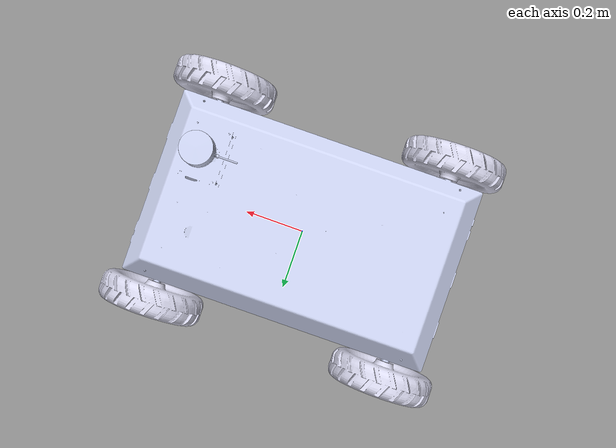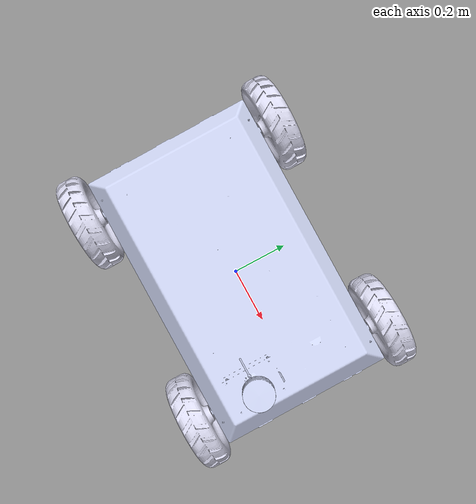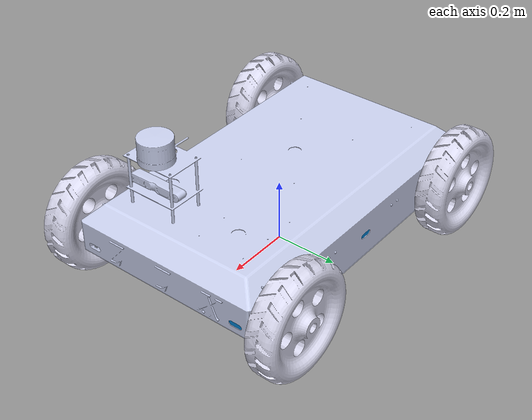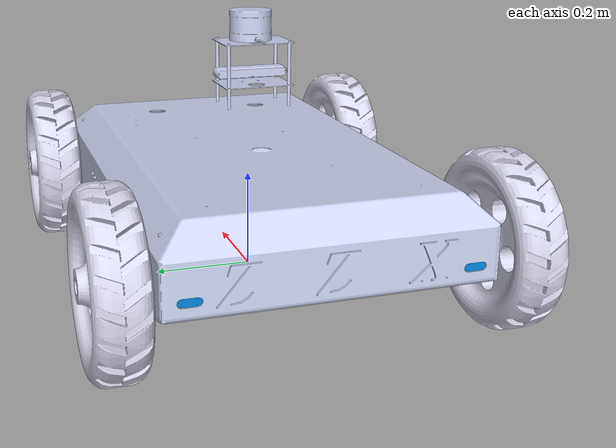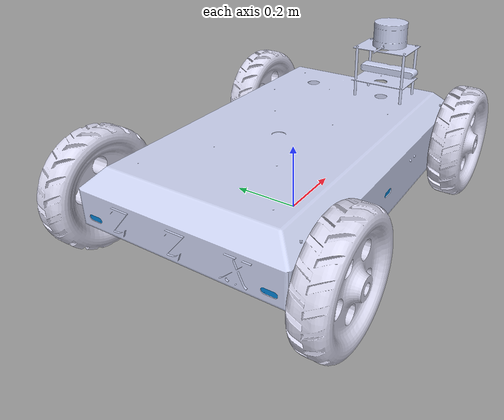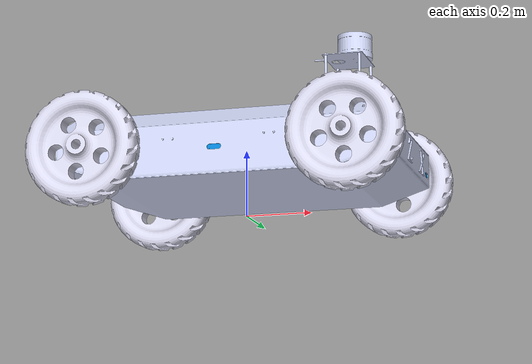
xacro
<?xml version="1.0" encoding="utf-8"?>
<!-- This xacro was created by ZZX-->
<robot xmlns:xacro="http://www.ros.org/wiki/xacro"
    xmlns:sensor="http://playerstage.sourceforge.net/gazebo/xmlschema/#sensor"
    xmlns:controller="http://playerstage.sourceforge.net/gazebo/xmlschema/#controller"
    xmlns:interface="http://playerstage.sourceforge.net/gazebo/xmlschema/#interface"
    name="zzx_run_robot">

<!--base_link-->
  <link
    name="base_link">
    <inertial>
      <origin
        xyz="0.00741047992278929 -0.00341114189657439 0.114186284669122"
        rpy="0 0 0" />
      <mass
        value="3.96236436148786" />
      <inertia
        ixx="0.178506185725259"
        ixy="0.000108304306880873"
        ixz="0.000169549055394087"
        iyy="0.404759631587269"
        iyz="1.00448230235288E-06"
        izz="0.561130623679876" />
    </inertial>
    <visual>
      <origin
        xyz="0 0 0"
        rpy="0 0 0" />
      <geometry>
        <mesh
          filename="package://zzx_run_description/meshes/base_link.STL" />
      </geometry>
      <material
        name="">
        <color
          rgba="0.792156862745098 0.819607843137255 0.933333333333333 1" />
      </material>
    </visual>
    <collision>
      <origin
        xyz="0 0 0"
        rpy="0 0 0" />
      <geometry>
        <mesh
          filename="package://zzx_run_description/meshes/base_link.STL" />
      </geometry>
    </collision>
  </link>

<!--base_footprint-->
   <link name="base_footprint">
            <visual>
                <origin xyz="0 0 0" rpy="0 0 0" />
                <geometry>
                    <box size="0.001 0.001 0.001" />
                </geometry>
            </visual>
  </link>

  <joint name="base_footprint_joint" type="fixed">
            <origin xyz="0 0 0.06746" rpy="0 0 0" />
            <parent link="base_footprint"/>
            <child link="base_link" />
  </joint>

<!--left_front_wheel_link-->
  <link
    name="left_front_wheel_link">
    <inertial>
      <origin
        xyz="-4.78387528979329E-07 0.0527999229567212 -1.21519264034697E-06"
        rpy="0 0 0" />
      <mass
        value="5.58816289074736" />
      <inertia
        ixx="0.0467264175417539"
        ixy="4.21922638423182E-10"
        ixz="4.31360254637763E-10"
        iyy="0.0872654610518181"
        iyz="5.11812738578019E-11"
        izz="0.0467264187453853" />
    </inertial>
    <visual>
      <origin
        xyz="0 0 0"
        rpy="0 0 0" />
      <geometry>
        <mesh
          filename="package://zzx_run_description/meshes/left_front_wheel_link.STL" />
      </geometry>
      <material
        name="">
        <color
          rgba="0.83921568627451 0.83921568627451 0.92156862745098 1" />
      </material>
    </visual>
    <collision>
      <origin
        xyz="0 0 0"
        rpy="0 0 0" />
      <geometry>
        <mesh
          filename="package://zzx_run_description/meshes/left_front_wheel_link.STL" />
      </geometry>
    </collision>
  </link>

  <!--left_front_wheel_link_joint-->
  <joint
    name="left_front_wheel_link_joint"
    type="continuous">
    <origin
      xyz="0.390000000000006 0.309999999999989 0.0849999999999932"
      rpy="0 0 0" />
    <parent
      link="base_link" />
    <child
      link="left_front_wheel_link" />
    <axis
      xyz="0 1 0" />
  </joint>

  <!--left_behind_wheel_link-->
  <link
    name="left_behind_wheel_link">
    <inertial>
      <origin
        xyz="1.31378196099874E-07 0.0527999220844182 -1.30022679351027E-06"
        rpy="0 0 0" />
      <mass
        value="5.58816261475792" />
      <inertia
        ixx="0.0467264178495617"
        ixy="-1.48432408253074E-10"
        ixz="3.45934344448938E-11"
        iyy="0.0872654610290871"
        iyz="5.288073487882E-10"
        izz="0.0467264184119642" />
    </inertial>
    <visual>
      <origin
        xyz="0 0 0"
        rpy="0 0 0" />
      <geometry>
        <mesh
          filename="package://zzx_run_description/meshes/left_behind_wheel_link.STL" />
      </geometry>
      <material
        name="">
        <color
          rgba="0.83921568627451 0.83921568627451 0.92156862745098 1" />
      </material>
    </visual>
    <collision>
      <origin
        xyz="0 0 0"
        rpy="0 0 0" />
      <geometry>
        <mesh
          filename="package://zzx_run_description/meshes/left_behind_wheel_link.STL" />
      </geometry>
    </collision>
  </link>

  <!--left_behind_wheel_link_joint-->
  <joint
    name="left_behind_wheel_link_joint"
    type="continuous">
    <origin
      xyz="-0.389999999999994 0.31 0.0850000000000068"
      rpy="0 0 0" />
    <parent
      link="base_link" />
    <child
      link="left_behind_wheel_link" />
    <axis
      xyz="0 1 0" />
  </joint>

  <!--right_front_wheel_link-->
  <link
    name="right_front_wheel_link">
    <inertial>
      <origin
        xyz="1.23487383696386E-06 -0.052800077037773 4.18657537137879E-07"
        rpy="0 0 0" />
      <mass
        value="5.58816289283226" />
      <inertia
        ixx="0.0467264183997509"
        ixy="-4.77846900738126E-10"
        ixz="9.0196657416584E-11"
        iyy="0.0872654610291803"
        iyz="-2.63885619866361E-10"
        izz="0.0467264178624116" />
    </inertial>
    <visual>
      <origin
        xyz="0 0 0"
        rpy="0 0 0" />
      <geometry>
        <mesh
          filename="package://zzx_run_description/meshes/right_front_wheel_link.STL" />
      </geometry>
      <material
        name="">
        <color
          rgba="0.83921568627451 0.83921568627451 0.92156862745098 1" />
      </material>
    </visual>
    <collision>
      <origin
        xyz="0 0 0"
        rpy="0 0 0" />
      <geometry>
        <mesh
          filename="package://zzx_run_description/meshes/right_front_wheel_link.STL" />
      </geometry>
    </collision>
  </link>

  <!--right_front_wheel_link_joint-->
  <joint
    name="right_front_wheel_link_joint"
    type="continuous">
    <origin
      xyz="0.389999999999997 -0.309999999999999 0.0849999999999932"
      rpy="0 0 0" />
    <parent
      link="base_link" />
    <child
      link="right_front_wheel_link" />
    <axis
      xyz="0 1 0" />
  </joint>

  <!--right_behind_wheel_link-->
  <link
    name="right_behind_wheel_link">
    <inertial>
      <origin
        xyz="-1.17487549072814E-06 -0.0528000779026511 5.64813343303938E-07"
        rpy="0 0 0" />
      <mass
        value="5.58816261843466" />
      <inertia
        ixx="0.0467264186791865"
        ixy="2.30502475654598E-11"
        ixz="-5.12433901318596E-10"
        iyy="0.0872654610531356"
        iyz="-4.26967668323502E-10"
        izz="0.0467264176094793" />
    </inertial>
    <visual>
      <origin
        xyz="0 0 0"
        rpy="0 0 0" />
      <geometry>
        <mesh
          filename="package://zzx_run_description/meshes/right_behind_wheel_link.STL" />
      </geometry>
      <material
        name="">
        <color
          rgba="0.83921568627451 0.83921568627451 0.92156862745098 1" />
      </material>
    </visual>
    <collision>
      <origin
        xyz="0 0 0"
        rpy="0 0 0" />
      <geometry>
        <mesh
          filename="package://zzx_run_description/meshes/right_behind_wheel_link.STL" />
      </geometry>
    </collision>
  </link>

  <!--right_behind_wheel_link_joint-->
  <joint
    name="right_behind_wheel_link_joint"
    type="continuous">
    <origin
      xyz="-0.390000000000003 -0.309999999999988 0.0850000000000068"
      rpy="0 0 0" />
    <parent
      link="base_link" />
    <child
      link="right_behind_wheel_link" />
    <axis
      xyz="0 1 0" />
  </joint>

  <!--camera_link-->
  <link
    name="camera_link">
    <inertial>
      <origin
        xyz="-0.0168162954023792 0.00256898920993011 -0.000512016798250026"
        rpy="0 0 0" />
      <mass
        value="0.146986742470214" />
      <inertia
        ixx="0.000382731548245758"
        ixy="4.93963664924208E-07"
        ixz="-2.21084683413792E-07"
        iyy="2.18219626833256E-05"
        iyz="1.36591231466188E-08"
        izz="0.00039064219791682" />
    </inertial>
    <visual>
      <origin
        xyz="0 0 0"
        rpy="0 0 0" />
      <geometry>
        <mesh
          filename="package://zzx_run_description/meshes/camera_link.STL" />
      </geometry>
      <material
        name="">
        <color
          rgba="0.792156862745098 0.819607843137255 0.933333333333333 1" />
      </material>
    </visual>
    <collision>
      <origin
        xyz="0 0 0"
        rpy="0 0 0" />
      <geometry>
        <mesh
          filename="package://zzx_run_description/meshes/camera_link.STL" />
      </geometry>
    </collision>
  </link>

  <!--camera_link_joint-->
  <joint
    name="camera_link_joint"
    type="fixed">
    <origin
      xyz="0.386266044151218 -0.124376808120098 0.277447441433298"
      rpy="0 0 0" />
    <parent
      link="base_link" />
    <child
      link="camera_link" />
    <axis
      xyz="0 0 0" />
  </joint>

<!--camera_frame_optical-->
  <link name="camera_frame_optical"/>
  <joint name="camera_optical_joint" type="fixed">
            <origin xyz="0 0 0" rpy="0 0 0"/>
            <parent link="camera_link"/>
            <child link="camera_frame_optical"/>
  </joint>

<!--lidar_link-->
  <link
    name="lidar_link">
    <inertial>
      <origin
        xyz="-0.000294907920402432 -2.58127452130996E-06 0.0357873616759956"
        rpy="0 0 0" />
      <mass
        value="0.584837208798273" />
      <inertia
        ixx="0.000628734791137339"
        ixy="1.12598116749922E-10"
        ixz="6.85180097758129E-08"
        iyy="0.000630029723696654"
        iyz="-5.00698245263915E-08"
        izz="0.000749153306350983" />
    </inertial>
    <visual>
      <origin
        xyz="0 0 -0.04"
        rpy="0 0 0" />
      <geometry>
        <mesh
          filename="package://zzx_run_description/meshes/lidar_link.STL" />
      </geometry>
      <material
        name="">
        <color
          rgba="0.792156862745098 0.819607843137255 0.933333333333333 1" />
      </material>
    </visual>
    <collision>
      <origin
        xyz="0 0 0"
        rpy="0 0 0" />
      <geometry>
        <mesh
          filename="package://zzx_run_description/meshes/lidar_link.STL" />
      </geometry>
    </collision>
  </link>

  <!--lidar_link_joint-->
  <joint
    name="lidar_link_joint"
    type="fixed">
    <origin
      xyz="0.365857864376286 -0.120857864376271 0.396652891956056"
      rpy="0 0 0" />
    <parent
      link="base_link" />
    <child
      link="lidar_link" />
    <axis
      xyz="0 0 0" />
  </joint>

  <!--senor-->
  <link
    name="sensor_front_left_link">
    <inertial>
      <origin
        xyz="0.000750000000000028 0 3.09553724072015E-05"
        rpy="0 0 0" />
      <mass
        value="0.00132898274514749" />
      <inertia
        ixx="2.65815808309703E-07"
        ixy="-3.24870024445377E-21"
        ixz="-7.30857667981816E-22"
        iyy="4.3932216790417E-08"
        iyz="2.51382133997089E-23"
        izz="2.22381960048716E-07" />
    </inertial>
    <visual>
      <origin
        xyz="0 0 0"
        rpy="0 0 0" />
      <geometry>
        <mesh
          filename="package://zzx_run_description/meshes/sensor_front_left_link.STL" />
      </geometry>
      <material
        name="">
        <color
          rgba="0.00784313725490196 0.501960784313725 0.823529411764706 1" />
      </material>
    </visual>
    <collision>
      <origin
        xyz="0 0 0"
        rpy="0 0 0" />
      <geometry>
        <mesh
          filename="package://zzx_run_description/meshes/sensor_front_left_link.STL" />
      </geometry>
    </collision>
  </link>

  <!--sensor_joint-->
  <joint
    name="sensor_front_left_link_joint"
    type="fixed">
    <origin
      xyz="0.496500000000005 0.251999999999993 0.0812075922005525"
      rpy="0 0 0" />
    <parent
      link="base_link" />
    <child
      link="sensor_front_left_link" />
    <axis
      xyz="0 0 0" />
  </joint>

  <!--senor-->
  <link
    name="sensor_front_right_link">
    <inertial>
      <origin
        xyz="-0.00109177850153874 -7.49896209573109E-08 -2.31929230855993E-05"
        rpy="0 0 0" />
      <mass
        value="7.00274812620844E-05" />
      <inertia
        ixx="6.82924437603274E-10"
        ixy="2.65325849768784E-15"
        ixz="-1.17242461319838E-12"
        iyy="1.19817207558257E-10"
        iyz="5.21250136782328E-15"
        izz="5.98449941960741E-10" />
    </inertial>
    <visual>
      <origin
        xyz="0 0 0"
        rpy="0 0 0" />
      <geometry>
        <mesh
          filename="package://zzx_run_description/meshes/sensor_front_right_link.STL" />
      </geometry>
      <material
        name="">
        <color
          rgba="0.666666666666667 0.698039215686274 0.768627450980392 1" />
      </material>
    </visual>
    <collision>
      <origin
        xyz="0 0 0"
        rpy="0 0 0" />
      <geometry>
        <mesh
          filename="package://zzx_run_description/meshes/sensor_front_right_link.STL" />
      </geometry>
    </collision>
  </link>

  <!--sensor_joint-->
  <joint
    name="sensor_front_right_link_joint"
    type="fixed">
    <origin
      xyz="0.496503236661323 -0.252916659440427 0.081388179281911"
      rpy="0 0 0" />
    <parent
      link="base_link" />
    <child
      link="sensor_front_right_link" />
    <axis
      xyz="0 0 0" />
  </joint>

  <!--senor-->
  <link
    name="sensor_behind_left_link">
    <inertial>
      <origin
        xyz="-0.000750000000000028 5.55111512312578E-17 3.09553724072015E-05"
        rpy="0 0 0" />
      <mass
        value="0.00132898274514748" />
      <inertia
        ixx="2.65815808309701E-07"
        ixy="-3.19304338349288E-21"
        ixz="-7.5601583612258E-22"
        iyy="4.39322167904166E-08"
        iyz="-3.65599011246738E-22"
        izz="2.22381960048715E-07" />
    </inertial>
    <visual>
      <origin
        xyz="0 0 0"
        rpy="0 0 0" />
      <geometry>
        <mesh
          filename="package://zzx_run_description/meshes/sensor_behind_left_link.STL" />
      </geometry>
      <material
        name="">
        <color
          rgba="0.00784313725490196 0.501960784313725 0.823529411764706 1" />
      </material>
    </visual>
    <collision>
      <origin
        xyz="0 0 0"
        rpy="0 0 0" />
      <geometry>
        <mesh
          filename="package://zzx_run_description/meshes/sensor_behind_left_link.STL" />
      </geometry>
    </collision>
  </link>

  <!--sensor_joint-->
  <joint
    name="sensor_behind_left_link_joint"
    type="fixed">
    <origin
      xyz="-0.496499999999995 0.253000000000007 0.0812075922005699"
      rpy="0 0 0" />
    <parent
      link="base_link" />
    <child
      link="sensor_behind_left_link" />
    <axis
      xyz="0 0 0" />
  </joint>

    <!--senor-->
  <link
    name="sensor_behind_right_link">
    <inertial>
      <origin
        xyz="-0.000750000000000028 0 3.09553724072292E-05"
        rpy="0 0 0" />
      <mass
        value="0.00132898274514749" />
      <inertia
        ixx="2.65815808309703E-07"
        ixy="-3.01916904385809E-21"
        ixz="-8.29243934464277E-22"
        iyy="4.39322167904169E-08"
        iyz="-1.53436981481006E-22"
        izz="2.22381960048716E-07" />
    </inertial>
    <visual>
      <origin
        xyz="0 0 0"
        rpy="0 0 0" />
      <geometry>
        <mesh
          filename="package://zzx_run_description/meshes/sensor_behind_right_link.STL" />
      </geometry>
      <material
        name="">
        <color
          rgba="0.00784313725490196 0.501960784313725 0.823529411764706 1" />
      </material>
    </visual>
    <collision>
      <origin
        xyz="0 0 0"
        rpy="0 0 0" />
      <geometry>
        <mesh
          filename="package://zzx_run_description/meshes/sensor_behind_right_link.STL" />
      </geometry>
    </collision>
  </link>

  <!--sensor_joint-->
  <joint
    name="sensor_behind_right_link_joint"
    type="fixed">
    <origin
      xyz="-0.496500000000002 -0.252999999999993 0.0812075922005699"
      rpy="0 0 0" />
    <parent
      link="base_link" />
    <child
      link="sensor_behind_right_link" />
    <axis
      xyz="0 0 0" />
  </joint>

    <!--senor-->
  <link
    name="sensor_left_link">
    <inertial>
      <origin
        xyz="-5.20417042793042E-18 0.000749999999999973 3.09553724072292E-05"
        rpy="0 0 0" />
      <mass
        value="0.00132898274514749" />
      <inertia
        ixx="4.39322167904169E-08"
        ixy="3.25536946488268E-21"
        ixz="3.07236956960054E-21"
        iyy="2.65815808309703E-07"
        iyz="1.1614249076827E-24"
        izz="2.22381960048716E-07" />
    </inertial>
    <visual>
      <origin
        xyz="0 0 0"
        rpy="0 0 0" />
      <geometry>
        <mesh
          filename="package://zzx_run_description/meshes/sensor_left_link.STL" />
      </geometry>
      <material
        name="">
        <color
          rgba="0.00784313725490196 0.501960784313725 0.823529411764706 1" />
      </material>
    </visual>
    <collision>
      <origin
        xyz="0 0 0"
        rpy="0 0 0" />
      <geometry>
        <mesh
          filename="package://zzx_run_description/meshes/sensor_left_link.STL" />
      </geometry>
    </collision>
  </link>

  <!--sensor_joint-->
  <joint
    name="sensor_left_link_joint"
    type="fixed">
    <origin
      xyz="-0.0109999999999945 0.2965 0.0798244648313157"
      rpy="0 0 0" />
    <parent
      link="base_link" />
    <child
      link="sensor_left_link" />
    <axis
      xyz="0 0 0" />
  </joint>

    <!--senor-->
  <link
    name="sensor_right_link">
    <inertial>
      <origin
        xyz="1.73472347597681E-18 -0.000750000000000028 3.09553724072154E-05"
        rpy="0 0 0" />
      <mass
        value="0.00132898274514748" />
      <inertia
        ixx="4.39322167904168E-08"
        ixy="3.2596193594168E-21"
        ixz="3.15270186615642E-21"
        iyy="2.65815808309702E-07"
        iyz="3.06525351744164E-24"
        izz="2.22381960048716E-07" />
    </inertial>
    <visual>
      <origin
        xyz="0 0 0"
        rpy="0 0 0" />
      <geometry>
        <mesh
          filename="package://zzx_run_description/meshes/sensor_right_link.STL" />
      </geometry>
      <material
        name="">
        <color
          rgba="0.00784313725490196 0.501960784313725 0.823529411764706 1" />
      </material>
    </visual>
    <collision>
      <origin
        xyz="0 0 0"
        rpy="0 0 0" />
      <geometry>
        <mesh
          filename="package://zzx_run_description/meshes/sensor_right_link.STL" />
      </geometry>
    </collision>
  </link>

  <!--sensor_joint-->
  <joint
    name="sensor_right_link_joint"
    type="fixed">
    <origin
      xyz="-0.0120000000000028 -0.2965 0.0798244648313158"
      rpy="0 0 0" />
    <parent
      link="base_link" />
    <child
      link="sensor_right_link" />
    <axis
      xyz="0 0 0" />
  </joint>

<!--lidar_link-->
        <gazebo reference="lidar_link">
            <sensor type="ray" name="rplidar">
                <pose>0 0 0 0 0 0</pose>
                <visualize>false</visualize>
                <update_rate>5.5</update_rate>
                <ray>
                    <scan>
                      <horizontal>
                        <samples>360</samples>
                        <resolution>1</resolution>
                        <min_angle>-3</min_angle>
                        <max_angle>3</max_angle>
                      </horizontal>
                    </scan>
                    <range>
                      <min>0.10</min>
                      <max>6.0</max>
                      <resolution>0.01</resolution>
                    </range>
                    <noise>
                      <type>gaussian</type>
                      <mean>0.0</mean>
                      <stddev>0.01</stddev>
                    </noise>
                </ray>
                <plugin name="gazebo_rplidar" filename="libgazebo_ros_laser.so">
                    <topicName>/scan</topicName>
                    <frameName>lidar_link</frameName>
                </plugin>
            </sensor>
        </gazebo>

<!-- Drive controller -->
<gazebo>
  <plugin name="skid_steer_drive_controller" filename="libgazebo_ros_skid_steer_drive.so">
    <updateRate>100.0</updateRate>
    <robotNamespace></robotNamespace>
    <leftFrontJoint>left_front_wheel_link_joint</leftFrontJoint>
    <rightFrontJoint>right_front_wheel_link_joint</rightFrontJoint>
    <leftRearJoint>left_behind_wheel_link_joint</leftRearJoint>
    <rightRearJoint>right_behind_wheel_link_joint</rightRearJoint>
    <wheelSeparation>0.64</wheelSeparation>
    <wheelDiameter>0.33</wheelDiameter>
    <commandTopic>cmd_vel</commandTopic>
    <odometryTopic>odom</odometryTopic>
    <robotBaseFrame>base_footprint</robotBaseFrame>
    <odometryFrame>odom</odometryFrame>
    <torque>1000</torque>
    <topicName>cmd_vel</topicName>
    <broadcastTF>1</broadcastTF>
  </plugin>
</gazebo>

<!-- ros_control plugin -->
  <gazebo>
    <plugin name="gazebo_ros_control" filename="libgazebo_ros_control.so">
      <robotNamespace>/zzx_run_robot</robotNamespace>
      <legacyModeNS>true</legacyModeNS>
    </plugin>
  </gazebo>

<!--friction-->
 <gazebo reference="left_front_wheel_link">
		    <mu1>10000</mu1>
		    <mu2>10000</mu2>
		    <kp>10000000</kp>
		    <kd>1</kd>
	</gazebo>

  <gazebo reference="left_behind_wheel_link">

		    <mu1>10000</mu1>
		    <mu2>10000</mu2>
		    <kp>10000000</kp>
		    <kd>1</kd>
	</gazebo>

  <gazebo reference="right_front_wheel_link">
		    <mu1>10000</mu1>
		    <mu2>10000</mu2>
		    <kp>10000000</kp>
		    <kd>1</kd>
	</gazebo>

  <gazebo reference="right_behind_wheel_link">
		    <mu1>10000</mu1>
		    <mu2>10000</mu2>
		    <kp>10000000</kp>
		    <kd>1</kd>
	</gazebo>

</robot>
